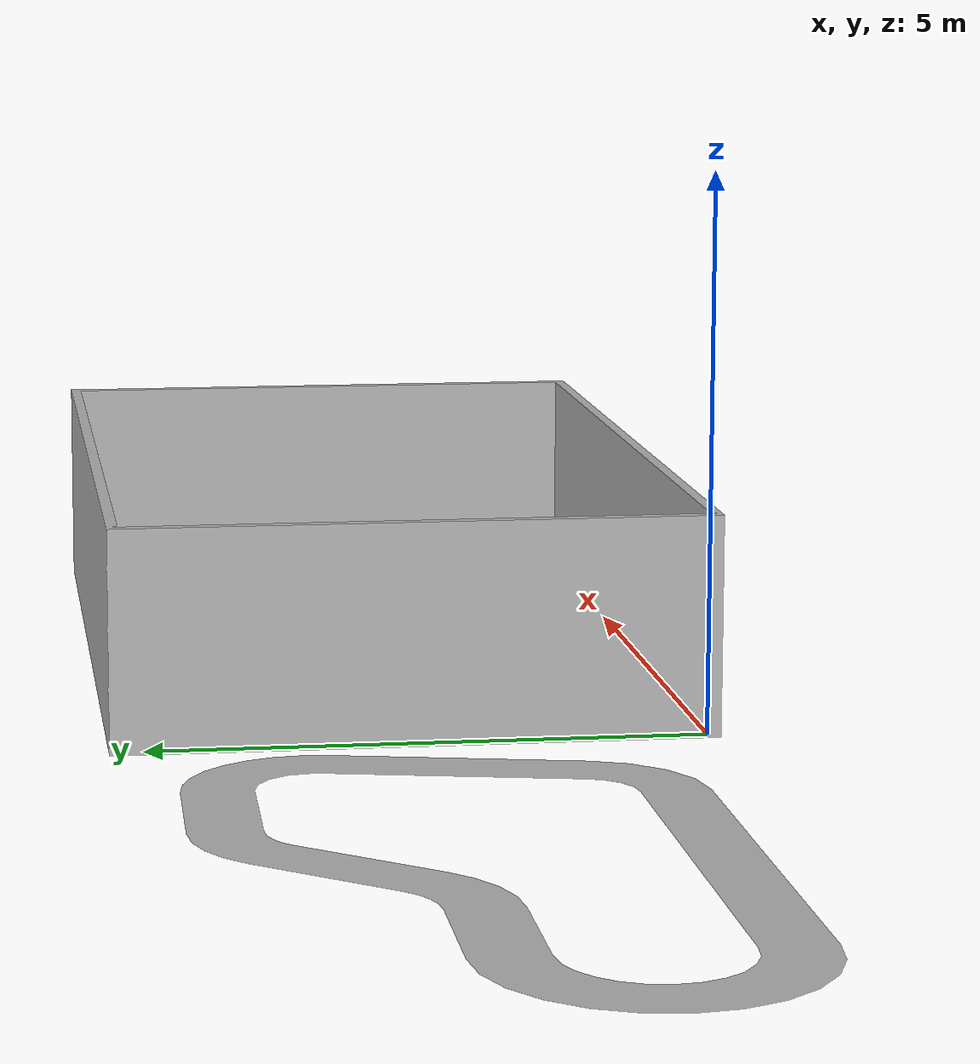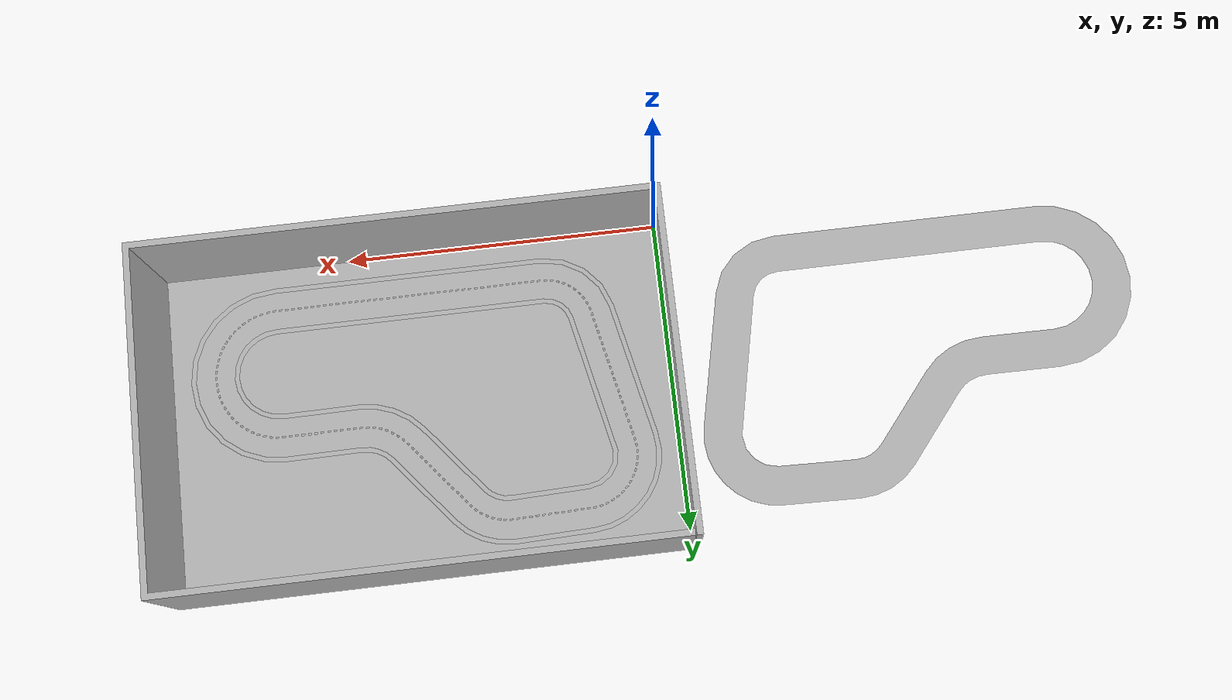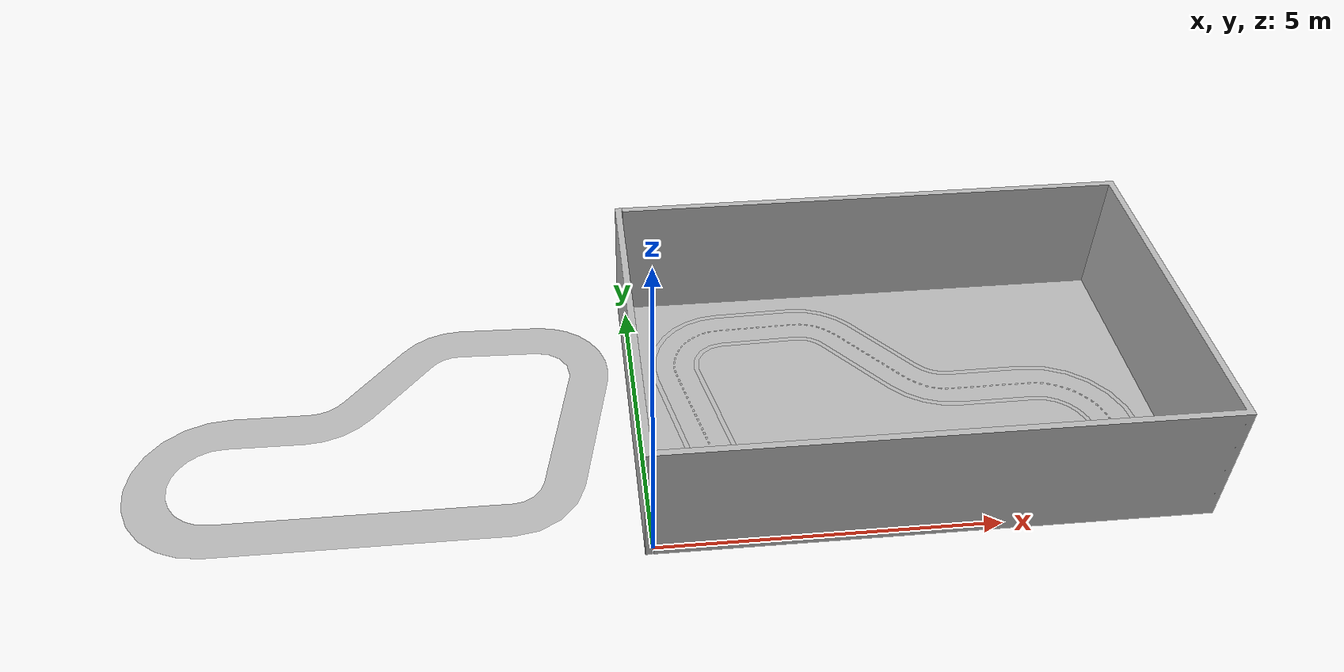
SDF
<?xml version='1.0'?>
<sdf version="1.7">
  <model name="linesWalls">
    <link name="outerLinesLink">
      <visual name="visual">
        <pose>0 0 0.002 0 0 0</pose>
        <geometry>
          <mesh>
            <uri>model://meshes/reinvent/outerLines.dae</uri>
          </mesh>
        </geometry>
      </visual>
    </link>
    <link name="innerLinesLink">
      <visual name="visual">
        <pose>0 0 0.002 0 0 0</pose>
        <geometry>
          <mesh>
            <uri>model://meshes/reinvent/inner_lines.dae</uri>
          </mesh>
        </geometry>
      </visual>
    </link>
    <link name="wallsLink">
      <visual name="visual">
        <pose>0 0 0 0 0 0</pose>
        <geometry>
          <mesh>
            <uri>model://meshes/reinvent/walls.dae</uri>
          </mesh>
        </geometry>
      </visual>
    </link>
    <link name="fieldLink">
      <visual name="visual">
        <pose>0 0 0 0 0 0</pose>
        <geometry>
          <mesh>
            <uri>model://meshes/reinvent/field_wood.dae</uri>
          </mesh>
        </geometry>
      </visual>
    </link>
    <link name="collisionLink">
      <collision name="collision">
        <pose>0 0 0 0 0 0</pose>
        <geometry>
          <mesh>
            <uri>model://meshes/reinvent/reinvent_base_wall_field_only.dae</uri>
          </mesh>
        </geometry>
      </collision>
    </link>
    <link name="roadLink">
      <visual name="visual">
        <pose>0 0 0.001 0 0 0</pose>
        <geometry>
          <mesh>
            <uri>model://meshes/reinvent/road_wood.dae</uri>
          </mesh>
        </geometry>
      </visual>
    </link>
    <static>1</static>
  </model>
</sdf>
